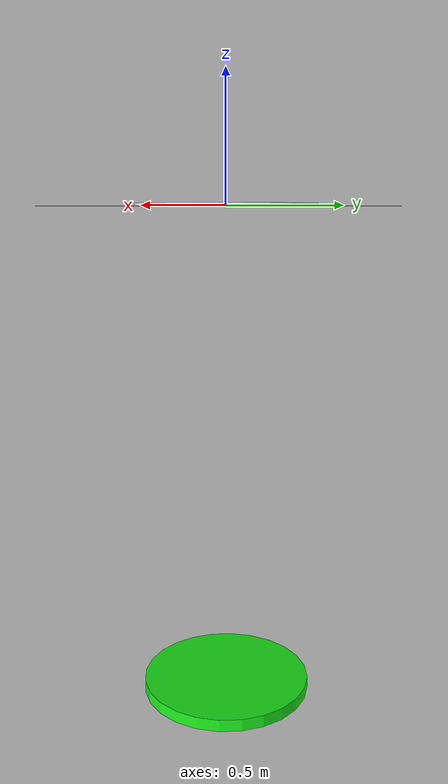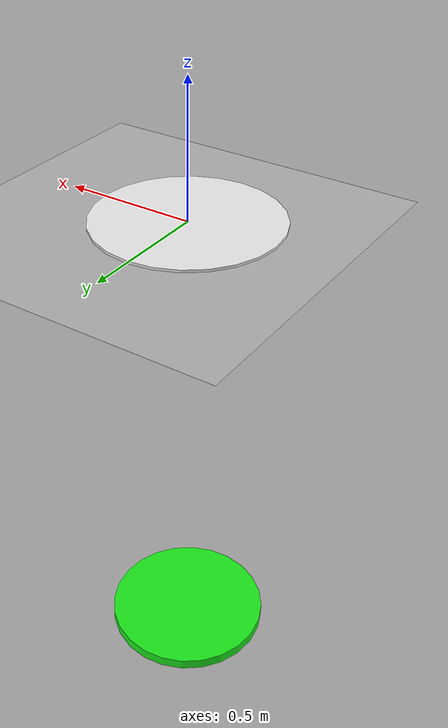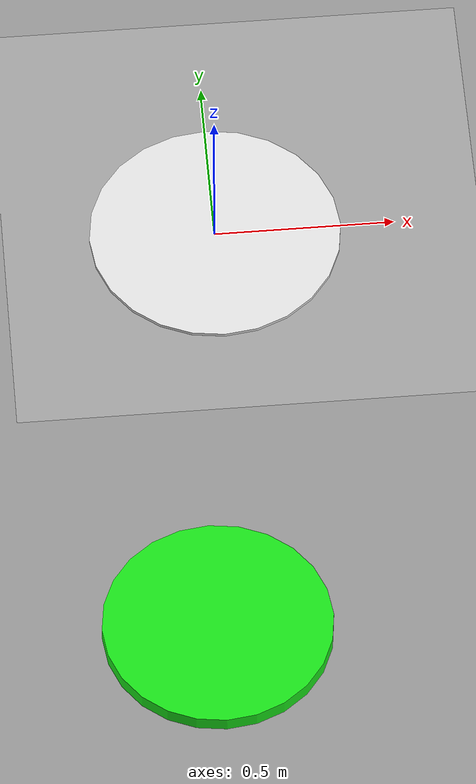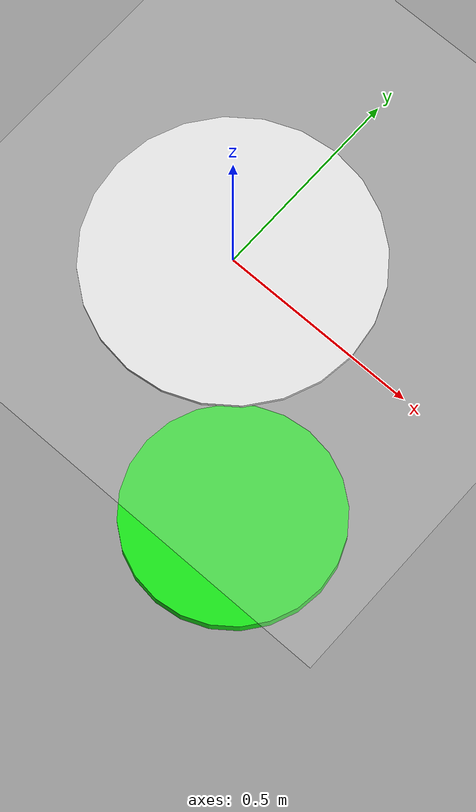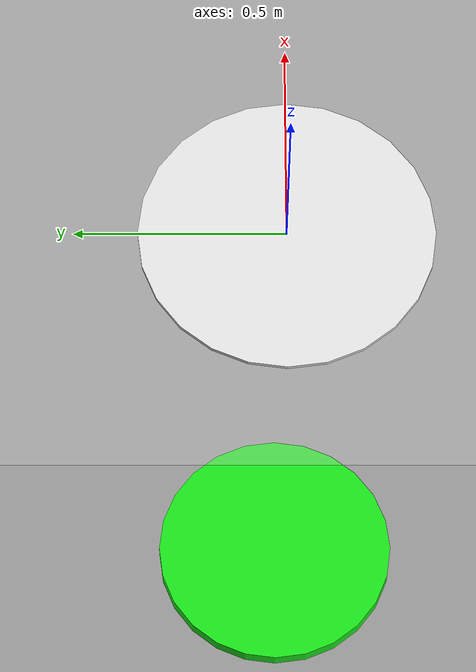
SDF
<sdf version="1.6">
	<world name="default">
		<light name="sun" type="directional">
			<cast_shadows>1</cast_shadows>
			<pose frame="">0 0 10 0 -0 0</pose>
			<diffuse>0.8 0.8 0.8 1</diffuse>
			<specular>0.2 0.2 0.2 1</specular>
			<attenuation>
				<range>1000</range>
				<constant>0.9</constant>
				<linear>0.01</linear>
				<quadratic>0.001</quadratic>
			</attenuation>
			<direction>-0.5 0.1 -0.9</direction>
		</light>
		<model name="ground_plane">
			<static>1</static>
			<link name="link">
				<collision name="collision">
					<geometry>
						<plane>
							<normal>0 0 1</normal>
							<size>100 100</size>
						</plane>
					</geometry>
					<surface>
						<contact>
							<collide_bitmask>65535</collide_bitmask>
							<ode/>
						</contact>
						<friction>
							<ode>
								<mu>100</mu>
								<mu2>50</mu2>
							</ode>
							<torsional>
								<ode/>
							</torsional>
						</friction>
						<bounce/>
					</surface>
					<max_contacts>10</max_contacts>
				</collision>
				<visual name="visual">
					<cast_shadows>0</cast_shadows>
					<geometry>
						<plane>
							<normal>0 0 1</normal>
							<size>100 100</size>
						</plane>
					</geometry>
					<material>
						<script>
							<uri>file://media/materials/scripts/gazebo.material</uri>
							<name>Gazebo/Grey</name>
						</script>
					</material>
				</visual>
				<self_collide>0</self_collide>
				<enable_wind>0</enable_wind>
				<kinematic>0</kinematic>
			</link>
		</model>
		<gravity>0 0 -9.8</gravity>
		<magnetic_field>6e-06 2.3e-05 -4.2e-05</magnetic_field>
		<atmosphere type="adiabatic"/>
		<physics name="default_physics" default="0" type="ode">
			<max_step_size>0.001</max_step_size>
			<real_time_factor>1</real_time_factor>
			<real_time_update_rate>1000</real_time_update_rate>
		</physics>
		<scene>
			<ambient>0.4 0.4 0.4 1</ambient>
			<background>0.7 0.7 0.7 1</background>
			<shadows>1</shadows>
		</scene>
		<audio>
			<device>default</device>
		</audio>
		<wind/>
		<spherical_coordinates>
			<surface_model>EARTH_WGS84</surface_model>
			<latitude_deg>0</latitude_deg>
			<longitude_deg>0</longitude_deg>
			<elevation>0</elevation>
			<heading_deg>0</heading_deg>
		</spherical_coordinates>
		<!-- Default GUI camera: top-down view of the whole arena (26 m above the
		     home, pitched 90 deg down). Yaw rotates the view on screen if needed. -->
		<gui>
			<camera name="user_camera">
				<pose>0 0 26 0 1.5708 0</pose>
			</camera>
		</gui>
		<!-- gazebo_ros_state: exposes /gazebo/set_entity_state, used by
		     reaching_task.py to move the target marker between trials. -->
		<plugin name="gazebo_ros_state" filename="libgazebo_ros_state.so">
			<ros>
				<namespace>/gazebo</namespace>
			</ros>
			<update_rate>10.0</update_rate>
		</plugin>
		<!-- Home marker: white disc on the floor at the robot's start pose.
		     Visual only (no collision), so the base drives over it freely. -->
		<model name="reaching_home">
			<static>1</static>
			<pose>0 0 0.005 0 0 0</pose>
			<link name="link">
				<visual name="visual">
					<geometry>
						<cylinder>
							<radius>0.35</radius>
							<length>0.01</length>
						</cylinder>
					</geometry>
					<material>
						<ambient>0.9 0.9 0.9 1</ambient>
						<diffuse>0.9 0.9 0.9 1</diffuse>
					</material>
				</visual>
			</link>
		</model>
		<model name="reaching_target">
			<static>0</static>
			<pose>0 0 -2 0 0 0</pose>
			<link name="link">
				<kinematic>1</kinematic>
				<gravity>0</gravity>
				<inertial>
					<mass>0.1</mass>
				</inertial>
				<visual name="visual">
					<geometry>
						<cylinder>
							<radius>0.35</radius>
							<length>0.05</length>
						</cylinder>
					</geometry>
					<material>
						<ambient>0.1 0.9 0.1 1</ambient>
						<diffuse>0.1 0.9 0.1 1</diffuse>
						<emissive>0.1 0.5 0.1 1</emissive>
					</material>
				</visual>
			</link>
		</model>
	</world>
</sdf>
